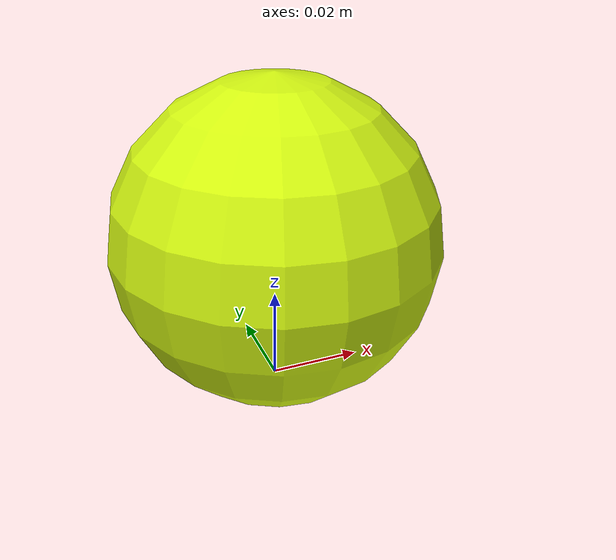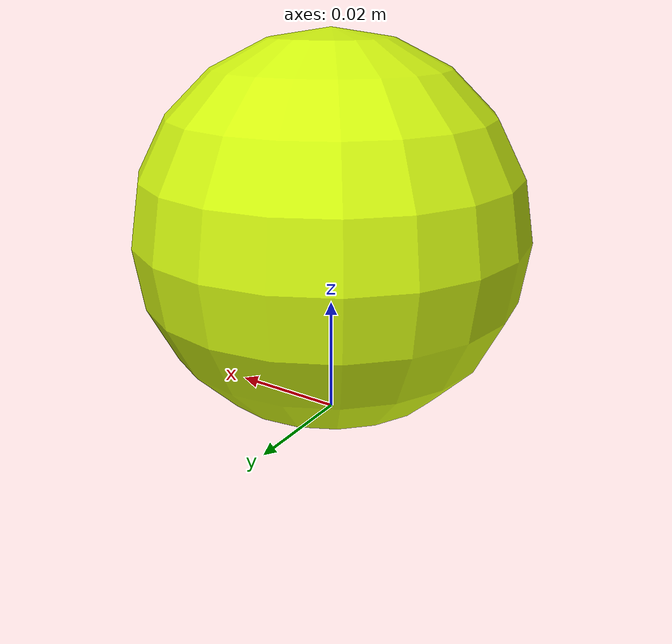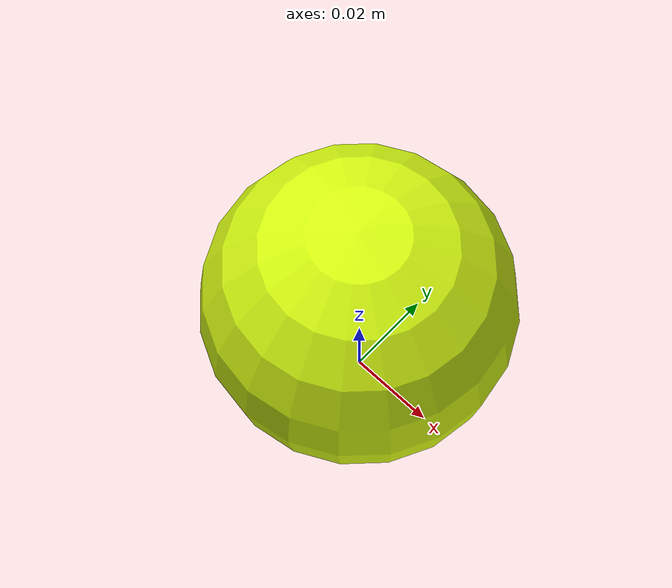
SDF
<?xml version="1.0"?>
<sdf version="1.10">
  <model name="tennis_ball">
    <pose>0 0 0.0335 0 0 0</pose>
    <link name="ball">
      <inertial>
        <mass>0.058</mass>
        <inertia>
          <ixx>0.000026</ixx>
          <iyy>0.000026</iyy>
          <izz>0.000026</izz>
          <ixy>0</ixy>
          <ixz>0</ixz>
          <iyz>0</iyz>
        </inertia>
      </inertial>
      <collision name="collision">
        <geometry>
          <sphere>
            <radius>0.0335</radius>
          </sphere>
        </geometry>
        <surface>
          <friction>
            <ode>
              <mu>0.65</mu>
              <mu2>0.65</mu2>
            </ode>
          </friction>
          <bounce>
            <restitution_coefficient>0.55</restitution_coefficient>
            <threshold>0.05</threshold>
          </bounce>
        </surface>
      </collision>
      <visual name="felt_visual">
        <geometry>
          <sphere>
            <radius>0.0335</radius>
          </sphere>
        </geometry>
        <material>
          <ambient>0.72 0.86 0.03 1</ambient>
          <diffuse>0.82 0.96 0.06 1</diffuse>
          <specular>0.18 0.20 0.05 1</specular>
        </material>
      </visual>
    </link>
  </model>
</sdf>
